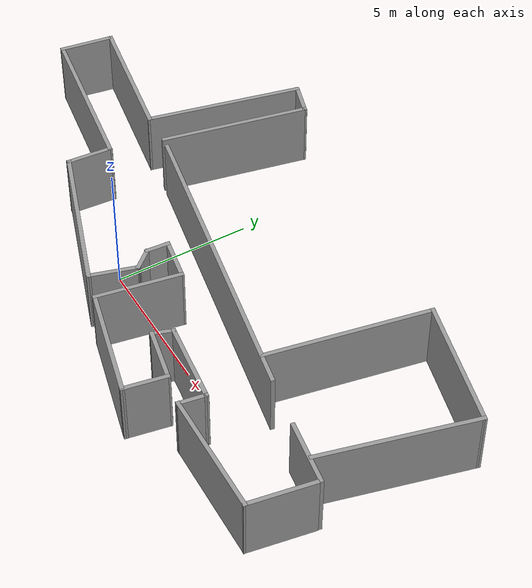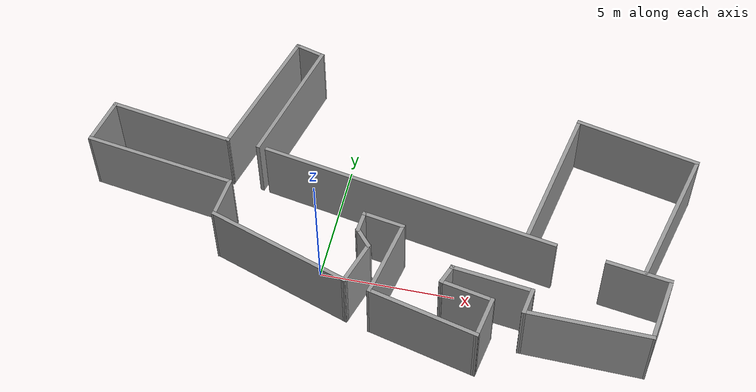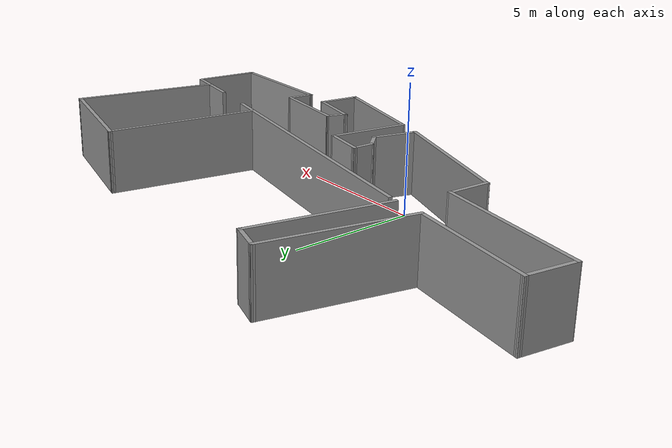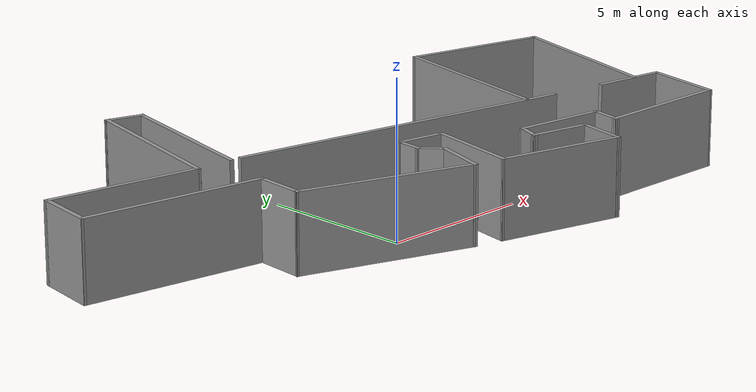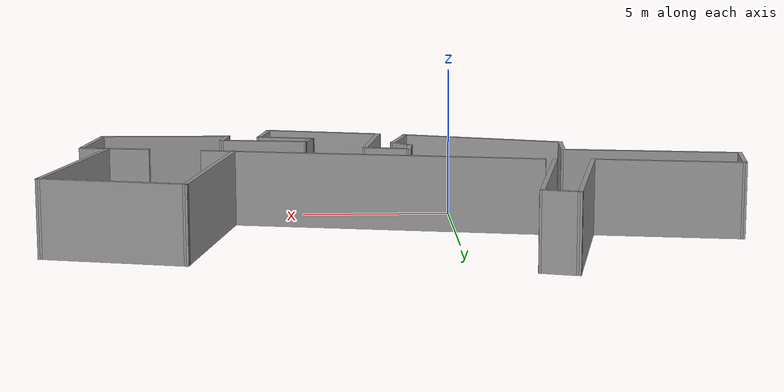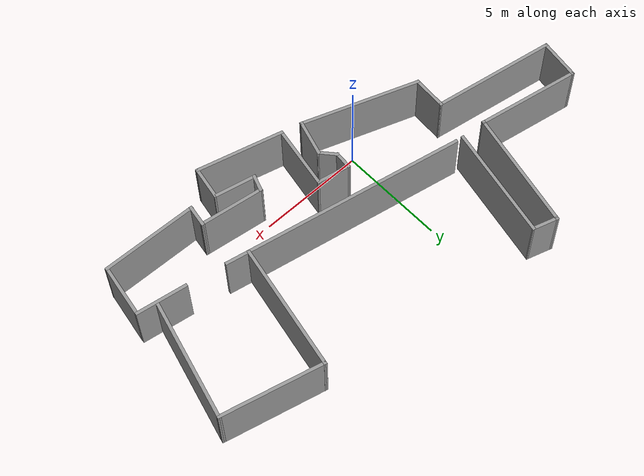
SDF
<?xml version='1.0'?>
<sdf version='1.6'>
  <model name='sanquirico_simplified'>
    <pose frame=''>1.73523 3.04751 0 0 -0 0</pose>
    <link name='Wall_1'>
      <collision name='Wall_1_Collision'>
        <geometry>
          <box>
            <size>11.5 0.15 2.5</size>
          </box>
        </geometry>
        <pose frame=''>0 0 1.25 0 -0 0</pose>
      </collision>
      <visual name='Wall_1_Visual'>
        <pose frame=''>0 0 1.25 0 -0 0</pose>
        <geometry>
          <box>
            <size>11.5 0.15 2.5</size>
          </box>
        </geometry>
        <material>
          <script>
            <uri>file://media/materials/scripts/gazebo.material</uri>
            <name>Gazebo/Grey</name>
          </script>
          <ambient>1 1 1 1</ambient>
        </material>
        <meta>
          <layer>0</layer>
        </meta>
      </visual>
      <pose frame=''>1.00689 -0.659033 0 0 -0 2.94568</pose>
    </link>
    <link name='Wall_10'>
      <collision name='Wall_10_Collision'>
        <geometry>
          <box>
            <size>1.84355 0.15 2.5</size>
          </box>
        </geometry>
        <pose frame=''>0 0 1.25 0 -0 0</pose>
      </collision>
      <visual name='Wall_10_Visual'>
        <pose frame=''>0 0 1.25 0 -0 0</pose>
        <geometry>
          <box>
            <size>1.84355 0.15 2.5</size>
          </box>
        </geometry>
        <material>
          <script>
            <uri>file://media/materials/scripts/gazebo.material</uri>
            <name>Gazebo/Grey</name>
          </script>
          <ambient>1 1 1 1</ambient>
        </material>
        <meta>
          <layer>0</layer>
        </meta>
      </visual>
      <pose frame=''>-0.094359 -3.99337 0 0 -0 1.27761</pose>
    </link>
    <link name='Wall_11'>
      <collision name='Wall_11_Collision'>
        <geometry>
          <box>
            <size>0.952957 0.15 2.5</size>
          </box>
        </geometry>
        <pose frame=''>0 0 1.25 0 -0 0</pose>
      </collision>
      <visual name='Wall_11_Visual'>
        <pose frame=''>0 0 1.25 0 -0 0</pose>
        <geometry>
          <box>
            <size>0.952957 0.15 2.5</size>
          </box>
        </geometry>
        <material>
          <script>
            <uri>file://media/materials/scripts/gazebo.material</uri>
            <name>Gazebo/Grey</name>
          </script>
          <ambient>1 1 1 1</ambient>
        </material>
        <meta>
          <layer>0</layer>
        </meta>
      </visual>
      <pose frame=''>-0.109654 -2.87683 0 0 -0 2.27529</pose>
    </link>
    <link name='Wall_12'>
      <collision name='Wall_12_Collision'>
        <geometry>
          <box>
            <size>0.917199 0.15 2.5</size>
          </box>
        </geometry>
        <pose frame=''>0 0 1.25 0 -0 0</pose>
      </collision>
      <visual name='Wall_12_Visual'>
        <pose frame=''>0 0 1.25 0 -0 0</pose>
        <geometry>
          <box>
            <size>0.917199 0.15 2.5</size>
          </box>
        </geometry>
        <material>
          <script>
            <uri>file://media/materials/scripts/gazebo.material</uri>
            <name>Gazebo/Grey</name>
          </script>
          <ambient>1 1 1 1</ambient>
        </material>
        <meta>
          <layer>0</layer>
        </meta>
      </visual>
      <pose frame=''>-0.339081 -2.18854 0 0 -0 1.49097</pose>
    </link>
    <link name='Wall_13'>
      <collision name='Wall_13_Collision'>
        <geometry>
          <box>
            <size>1.64392 0.15 2.5</size>
          </box>
        </geometry>
        <pose frame=''>0 0 1.25 0 -0 0</pose>
      </collision>
      <visual name='Wall_13_Visual'>
        <pose frame=''>0 0 1.25 0 -0 0</pose>
        <geometry>
          <box>
            <size>1.64392 0.15 2.5</size>
          </box>
        </geometry>
        <material>
          <script>
            <uri>file://media/materials/scripts/gazebo.material</uri>
            <name>Gazebo/Grey</name>
          </script>
          <ambient>1 1 1 1</ambient>
        </material>
        <meta>
          <layer>0</layer>
        </meta>
      </visual>
      <pose frame=''>0.425674 -1.94382 0 0 -0 -0.185348</pose>
    </link>
    <link name='Wall_14'>
      <collision name='Wall_14_Collision'>
        <geometry>
          <box>
            <size>3.16791 0.15 2.5</size>
          </box>
        </geometry>
        <pose frame=''>0 0 1.25 0 -0 0</pose>
      </collision>
      <visual name='Wall_14_Visual'>
        <pose frame=''>0 0 1.25 0 -0 0</pose>
        <geometry>
          <box>
            <size>3.16791 0.15 2.5</size>
          </box>
        </geometry>
        <material>
          <script>
            <uri>file://media/materials/scripts/gazebo.material</uri>
            <name>Gazebo/Grey</name>
          </script>
          <ambient>1 1 1 1</ambient>
        </material>
        <meta>
          <layer>0</layer>
        </meta>
      </visual>
      <pose frame=''>0.884528 -3.5651 0 0 -0 -1.75428</pose>
    </link>
    <link name='Wall_15'>
      <collision name='Wall_15_Collision'>
        <geometry>
          <box>
            <size>4.19358 0.15 2.5</size>
          </box>
        </geometry>
        <pose frame=''>0 0 1.25 0 -0 0</pose>
      </collision>
      <visual name='Wall_15_Visual'>
        <pose frame=''>0 0 1.25 0 -0 0</pose>
        <geometry>
          <box>
            <size>4.19358 0.15 2.5</size>
          </box>
        </geometry>
        <material>
          <script>
            <uri>file://media/materials/scripts/gazebo.material</uri>
            <name>Gazebo/Grey</name>
          </script>
          <ambient>1 1 1 1</ambient>
        </material>
        <meta>
          <layer>0</layer>
        </meta>
      </visual>
      <pose frame=''>2.56699 -5.55347 0 0 -0 -0.252318</pose>
    </link>
    <link name='Wall_16'>
      <collision name='Wall_16_Collision'>
        <geometry>
          <box>
            <size>1.67399 0.15 2.5</size>
          </box>
        </geometry>
        <pose frame=''>0 0 1.25 0 -0 0</pose>
      </collision>
      <visual name='Wall_16_Visual'>
        <pose frame=''>0 0 1.25 0 -0 0</pose>
        <geometry>
          <box>
            <size>1.67399 0.15 2.5</size>
          </box>
        </geometry>
        <material>
          <script>
            <uri>file://media/materials/scripts/gazebo.material</uri>
            <name>Gazebo/Grey</name>
          </script>
          <ambient>1 1 1 1</ambient>
        </material>
        <meta>
          <layer>0</layer>
        </meta>
      </visual>
      <pose frame=''>4.66242 -5.30875 0 0 -0 1.38915</pose>
    </link>
    <link name='Wall_17'>
      <collision name='Wall_17_Collision'>
        <geometry>
          <box>
            <size>2.028 0.15 2.5</size>
          </box>
        </geometry>
        <pose frame=''>0 0 1.25 0 -0 0</pose>
      </collision>
      <visual name='Wall_17_Visual'>
        <pose frame=''>0 0 1.25 0 -0 0</pose>
        <geometry>
          <box>
            <size>2.028 0.15 2.5</size>
          </box>
        </geometry>
        <material>
          <script>
            <uri>file://media/materials/scripts/gazebo.material</uri>
            <name>Gazebo/Grey</name>
          </script>
          <ambient>1 1 1 1</ambient>
        </material>
        <meta>
          <layer>0</layer>
        </meta>
      </visual>
      <pose frame=''>3.88237 -4.36045 0 0 -0 2.92822</pose>
    </link>
    <link name='Wall_18'>
      <collision name='Wall_18_Collision'>
        <geometry>
          <box>
            <size>0.866099 0.15 2.5</size>
          </box>
        </geometry>
        <pose frame=''>0 0 1.25 0 -0 0</pose>
      </collision>
      <visual name='Wall_18_Visual'>
        <pose frame=''>0 0 1.25 0 -0 0</pose>
        <geometry>
          <box>
            <size>0.866099 0.15 2.5</size>
          </box>
        </geometry>
        <material>
          <script>
            <uri>file://media/materials/scripts/gazebo.material</uri>
            <name>Gazebo/Grey</name>
          </script>
          <ambient>1 1 1 1</ambient>
        </material>
        <meta>
          <layer>0</layer>
        </meta>
      </visual>
      <pose frame=''>3.08702 -3.82512 0 0 -0 1.22202</pose>
    </link>
    <link name='Wall_19'>
      <collision name='Wall_19_Collision'>
        <geometry>
          <box>
            <size>3.05285 0.15 2.5</size>
          </box>
        </geometry>
        <pose frame=''>0 0 1.25 0 -0 0</pose>
      </collision>
      <visual name='Wall_19_Visual'>
        <pose frame=''>0 0 1.25 0 -0 0</pose>
        <geometry>
          <box>
            <size>3.05285 0.15 2.5</size>
          </box>
        </geometry>
        <material>
          <script>
            <uri>file://media/materials/scripts/gazebo.material</uri>
            <name>Gazebo/Grey</name>
          </script>
          <ambient>1 1 1 1</ambient>
        </material>
        <meta>
          <layer>0</layer>
        </meta>
      </visual>
      <pose frame=''>4.64713 -3.68747 0 0 -0 -0.137426</pose>
    </link>
    <link name='Wall_2'>
      <collision name='Wall_2_Collision'>
        <geometry>
          <box>
            <size>5.47208 0.15 2.5</size>
          </box>
        </geometry>
        <pose frame=''>0 0 1.25 0 -0 0</pose>
      </collision>
      <visual name='Wall_2_Visual'>
        <pose frame=''>0 0 1.25 0 -0 0</pose>
        <geometry>
          <box>
            <size>5.47208 0.15 2.5</size>
          </box>
        </geometry>
        <material>
          <script>
            <uri>file://media/materials/scripts/gazebo.material</uri>
            <name>Gazebo/Grey</name>
          </script>
          <ambient>1 1 1 1</ambient>
        </material>
        <meta>
          <layer>0</layer>
        </meta>
      </visual>
      <pose frame=''>-4.3617 3.11886 0 0 -0 1.35649</pose>
    </link>
    <link name='Wall_20'>
      <collision name='Wall_20_Collision'>
        <geometry>
          <box>
            <size>1.08037 0.15 2.5</size>
          </box>
        </geometry>
        <pose frame=''>0 0 1.25 0 -0 0</pose>
      </collision>
      <visual name='Wall_20_Visual'>
        <pose frame=''>0 0 1.25 0 -0 0</pose>
        <geometry>
          <box>
            <size>1.08037 0.15 2.5</size>
          </box>
        </geometry>
        <material>
          <script>
            <uri>file://media/materials/scripts/gazebo.material</uri>
            <name>Gazebo/Grey</name>
          </script>
          <ambient>1 1 1 1</ambient>
        </material>
        <meta>
          <layer>0</layer>
        </meta>
      </visual>
      <pose frame=''>6.00839 -4.34516 0 0 -0 -1.73595</pose>
    </link>
    <link name='Wall_21'>
      <collision name='Wall_21_Collision'>
        <geometry>
          <box>
            <size>4.52611 0.15 2.5</size>
          </box>
        </geometry>
        <pose frame=''>0 0 1.25 0 -0 0</pose>
      </collision>
      <visual name='Wall_21_Visual'>
        <pose frame=''>0 0 1.25 0 -0 0</pose>
        <geometry>
          <box>
            <size>4.52611 0.15 2.5</size>
          </box>
        </geometry>
        <material>
          <script>
            <uri>file://media/materials/scripts/gazebo.material</uri>
            <name>Gazebo/Grey</name>
          </script>
          <ambient>1 1 1 1</ambient>
        </material>
        <meta>
          <layer>0</layer>
        </meta>
      </visual>
      <pose frame=''>8.11912 -4.86519 0 0 -0 -0.027965</pose>
    </link>
    <link name='Wall_22'>
      <collision name='Wall_22_Collision'>
        <geometry>
          <box>
            <size>2.4848 0.15 2.5</size>
          </box>
        </geometry>
        <pose frame=''>0 0 1.25 0 -0 0</pose>
      </collision>
      <visual name='Wall_22_Visual'>
        <pose frame=''>0 0 1.25 0 -0 0</pose>
        <geometry>
          <box>
            <size>2.4848 0.15 2.5</size>
          </box>
        </geometry>
        <material>
          <script>
            <uri>file://media/materials/scripts/gazebo.material</uri>
            <name>Gazebo/Grey</name>
          </script>
          <ambient>1 1 1 1</ambient>
        </material>
        <meta>
          <layer>0</layer>
        </meta>
      </visual>
      <pose frame=''>10.5008 -3.77528 0 0 -0 1.40346</pose>
    </link>
    <link name='Wall_24'>
      <collision name='Wall_24_Collision'>
        <geometry>
          <box>
            <size>5.77395 0.15 2.5</size>
          </box>
        </geometry>
        <pose frame=''>0 0 1.25 0 -0 0</pose>
      </collision>
      <visual name='Wall_24_Visual'>
        <pose frame=''>0 0 1.25 0 -0 0</pose>
        <geometry>
          <box>
            <size>5.77395 0.15 2.5</size>
          </box>
        </geometry>
        <material>
          <script>
            <uri>file://media/materials/scripts/gazebo.material</uri>
            <name>Gazebo/Grey</name>
          </script>
          <ambient>1 1 1 1</ambient>
        </material>
        <meta>
          <layer>0</layer>
        </meta>
      </visual>
      <pose frame=''>10.5205 0.42692 0 0 -0 1.3179</pose>
    </link>
    <link name='Wall_25'>
      <collision name='Wall_25_Collision'>
        <geometry>
          <box>
            <size>4.81669 0.15 2.5</size>
          </box>
        </geometry>
        <pose frame=''>0 0 1.25 0 -0 0</pose>
      </collision>
      <visual name='Wall_25_Visual'>
        <pose frame=''>0 0 1.25 0 -0 0</pose>
        <geometry>
          <box>
            <size>4.81669 0.15 2.5</size>
          </box>
        </geometry>
        <material>
          <script>
            <uri>file://media/materials/scripts/gazebo.material</uri>
            <name>Gazebo/Grey</name>
          </script>
          <ambient>1 1 1 1</ambient>
        </material>
        <meta>
          <layer>0</layer>
        </meta>
      </visual>
      <pose frame=''>8.96035 3.71537 0 0 -0 2.89661</pose>
    </link>
    <link name='Wall_26'>
      <collision name='Wall_26_Collision'>
        <geometry>
          <box>
            <size>6.07132 0.15 2.5</size>
          </box>
        </geometry>
        <pose frame=''>0 0 1.25 0 -0 0</pose>
      </collision>
      <visual name='Wall_26_Visual'>
        <pose frame=''>0 0 1.25 0 -0 0</pose>
        <geometry>
          <box>
            <size>6.07132 0.15 2.5</size>
          </box>
        </geometry>
        <material>
          <script>
            <uri>file://media/materials/scripts/gazebo.material</uri>
            <name>Gazebo/Grey</name>
          </script>
          <ambient>1 1 1 1</ambient>
        </material>
        <meta>
          <layer>0</layer>
        </meta>
      </visual>
      <pose frame=''>6.13075 1.37522 0 0 -0 -1.76313</pose>
    </link>
    <link name='Wall_3'>
      <collision name='Wall_3_Collision'>
        <geometry>
          <box>
            <size>1.27229 0.15 2.5</size>
          </box>
        </geometry>
        <pose frame=''>0 0 1.25 0 -0 0</pose>
      </collision>
      <visual name='Wall_3_Visual'>
        <pose frame=''>0 0 1.25 0 -0 0</pose>
        <geometry>
          <box>
            <size>1.27229 0.15 2.5</size>
          </box>
        </geometry>
        <material>
          <script>
            <uri>file://media/materials/scripts/gazebo.material</uri>
            <name>Gazebo/Grey</name>
          </script>
          <ambient>1 1 1 1</ambient>
        </material>
        <meta>
          <layer>0</layer>
        </meta>
      </visual>
      <pose frame=''>-4.33111 5.88727 0 0 -0 2.83708</pose>
    </link>
    <link name='Wall_30'>
      <collision name='Wall_30_Collision'>
        <geometry>
          <box>
            <size>2.41312 0.15 2.5</size>
          </box>
        </geometry>
        <pose frame=''>0 0 1.25 0 -0 0</pose>
      </collision>
      <visual name='Wall_30_Visual'>
        <pose frame=''>0 0 1.25 0 -0 0</pose>
        <geometry>
          <box>
            <size>2.41312 0.15 2.5</size>
          </box>
        </geometry>
        <material>
          <script>
            <uri>file://media/materials/scripts/gazebo.material</uri>
            <name>Gazebo/Grey</name>
          </script>
          <ambient>1 1 1 1</ambient>
        </material>
        <meta>
          <layer>0</layer>
        </meta>
      </visual>
      <pose frame=''>9.58867 -2.31036 0 0 -0 -0.163179</pose>
    </link>
    <link name='Wall_4'>
      <collision name='Wall_4_Collision'>
        <geometry>
          <box>
            <size>5.77436 0.15 2.5</size>
          </box>
        </geometry>
        <pose frame=''>0 0 1.25 0 -0 0</pose>
      </collision>
      <visual name='Wall_4_Visual'>
        <pose frame=''>0 0 1.25 0 -0 0</pose>
        <geometry>
          <box>
            <size>5.77436 0.15 2.5</size>
          </box>
        </geometry>
        <material>
          <script>
            <uri>file://media/materials/scripts/gazebo.material</uri>
            <name>Gazebo/Grey</name>
          </script>
          <ambient>1 1 1 1</ambient>
        </material>
        <meta>
          <layer>0</layer>
        </meta>
      </visual>
      <pose frame=''>-5.50883 3.3177 0 0 -0 -1.80126</pose>
    </link>
    <link name='Wall_5'>
      <collision name='Wall_5_Collision'>
        <geometry>
          <box>
            <size>4.99833 0.15 2.5</size>
          </box>
        </geometry>
        <pose frame=''>0 0 1.25 0 -0 0</pose>
      </collision>
      <visual name='Wall_5_Visual'>
        <pose frame=''>0 0 1.25 0 -0 0</pose>
        <geometry>
          <box>
            <size>4.99833 0.15 2.5</size>
          </box>
        </geometry>
        <material>
          <script>
            <uri>file://media/materials/scripts/gazebo.material</uri>
            <name>Gazebo/Grey</name>
          </script>
          <ambient>1 1 1 1</ambient>
        </material>
        <meta>
          <layer>0</layer>
        </meta>
      </visual>
      <pose frame=''>-8.53726 1.00813 0 0 -0 2.964</pose>
    </link>
    <link name='Wall_6'>
      <collision name='Wall_6_Collision'>
        <geometry>
          <box>
            <size>2.04091 0.15 2.5</size>
          </box>
        </geometry>
        <pose frame=''>0 0 1.25 0 -0 0</pose>
      </collision>
      <visual name='Wall_6_Visual'>
        <pose frame=''>0 0 1.25 0 -0 0</pose>
        <geometry>
          <box>
            <size>2.04091 0.15 2.5</size>
          </box>
        </geometry>
        <material>
          <script>
            <uri>file://media/materials/scripts/gazebo.material</uri>
            <name>Gazebo/Grey</name>
          </script>
          <ambient>1 1 1 1</ambient>
        </material>
        <meta>
          <layer>0</layer>
        </meta>
      </visual>
      <pose frame=''>-11.0763 0.503395 0 0 -0 -1.73328</pose>
    </link>
    <link name='Wall_7'>
      <collision name='Wall_7_Collision'>
        <geometry>
          <box>
            <size>5.97862 0.15 2.5</size>
          </box>
        </geometry>
        <pose frame=''>0 0 1.25 0 -0 0</pose>
      </collision>
      <visual name='Wall_7_Visual'>
        <pose frame=''>0 0 1.25 0 -0 0</pose>
        <geometry>
          <box>
            <size>5.97862 0.15 2.5</size>
          </box>
        </geometry>
        <material>
          <script>
            <uri>file://media/materials/scripts/gazebo.material</uri>
            <name>Gazebo/Grey</name>
          </script>
          <ambient>1 1 1 1</ambient>
        </material>
        <meta>
          <layer>0</layer>
        </meta>
      </visual>
      <pose frame=''>-8.35372 -0.903755 0 0 -0 -0.163423</pose>
    </link>
    <link name='Wall_8'>
      <collision name='Wall_8_Collision'>
        <geometry>
          <box>
            <size>1.71489 0.15 2.5</size>
          </box>
        </geometry>
        <pose frame=''>0 0 1.25 0 -0 0</pose>
      </collision>
      <visual name='Wall_8_Visual'>
        <pose frame=''>0 0 1.25 0 -0 0</pose>
        <geometry>
          <box>
            <size>1.71489 0.15 2.5</size>
          </box>
        </geometry>
        <material>
          <script>
            <uri>file://media/materials/scripts/gazebo.material</uri>
            <name>Gazebo/Grey</name>
          </script>
          <ambient>1 1 1 1</ambient>
        </material>
        <meta>
          <layer>0</layer>
        </meta>
      </visual>
      <pose frame=''>-5.53942 -2.15795 0 0 -0 -1.64907</pose>
    </link>
    <link name='Wall_9'>
      <collision name='Wall_9_Collision'>
        <geometry>
          <box>
            <size>5.73261 0.15 2.5</size>
          </box>
        </geometry>
        <pose frame=''>0 0 1.25 0 -0 0</pose>
      </collision>
      <visual name='Wall_9_Visual'>
        <pose frame=''>0 0 1.25 0 -0 0</pose>
        <geometry>
          <box>
            <size>5.73261 0.15 2.5</size>
          </box>
        </geometry>
        <material>
          <script>
            <uri>file://media/materials/scripts/gazebo.material</uri>
            <name>Gazebo/Grey</name>
          </script>
          <ambient>1 1 1 1</ambient>
        </material>
        <meta>
          <layer>0</layer>
        </meta>
      </visual>
      <pose frame=''>-2.96984 -3.87101 0 0 -0 -0.340812</pose>
    </link>
    <static>1</static>
  </model>
</sdf>
